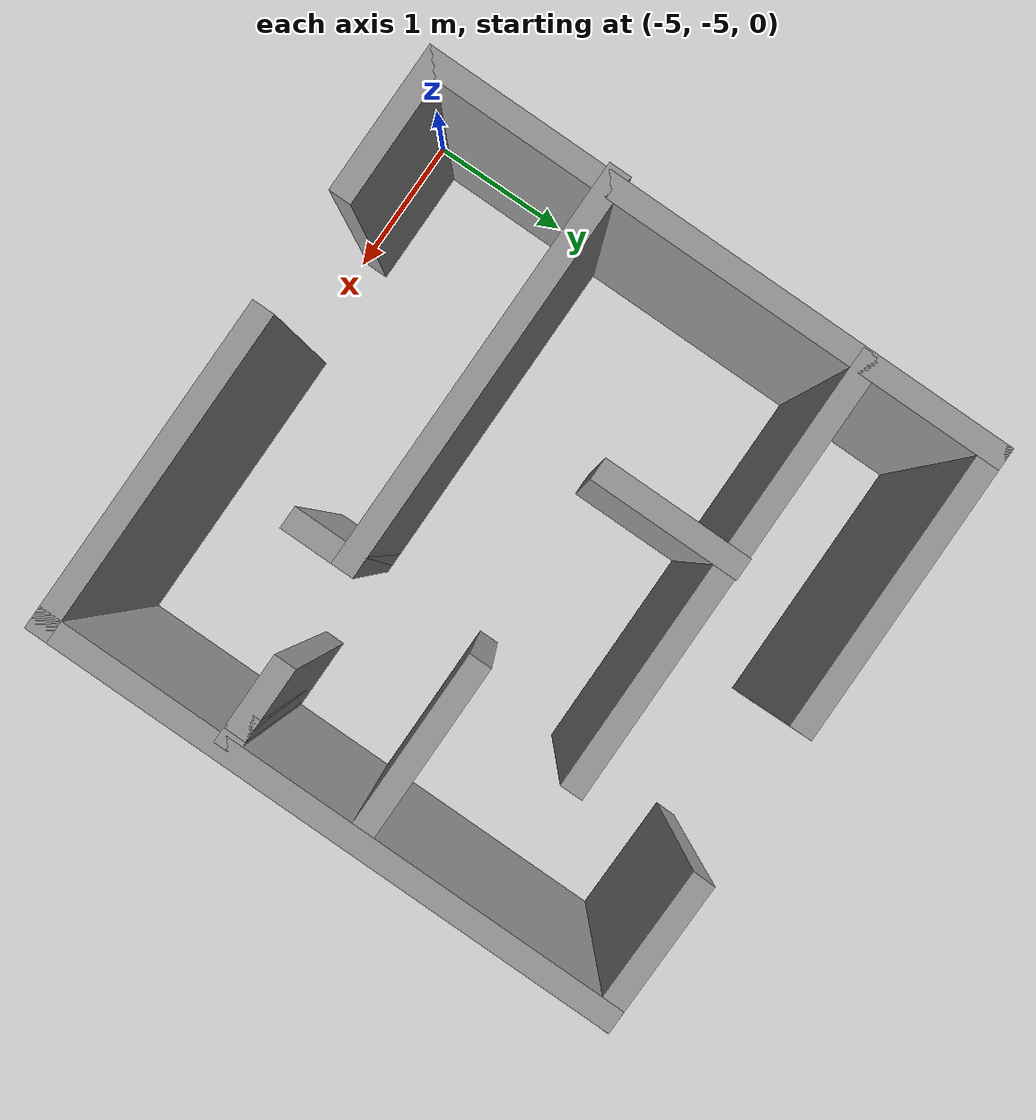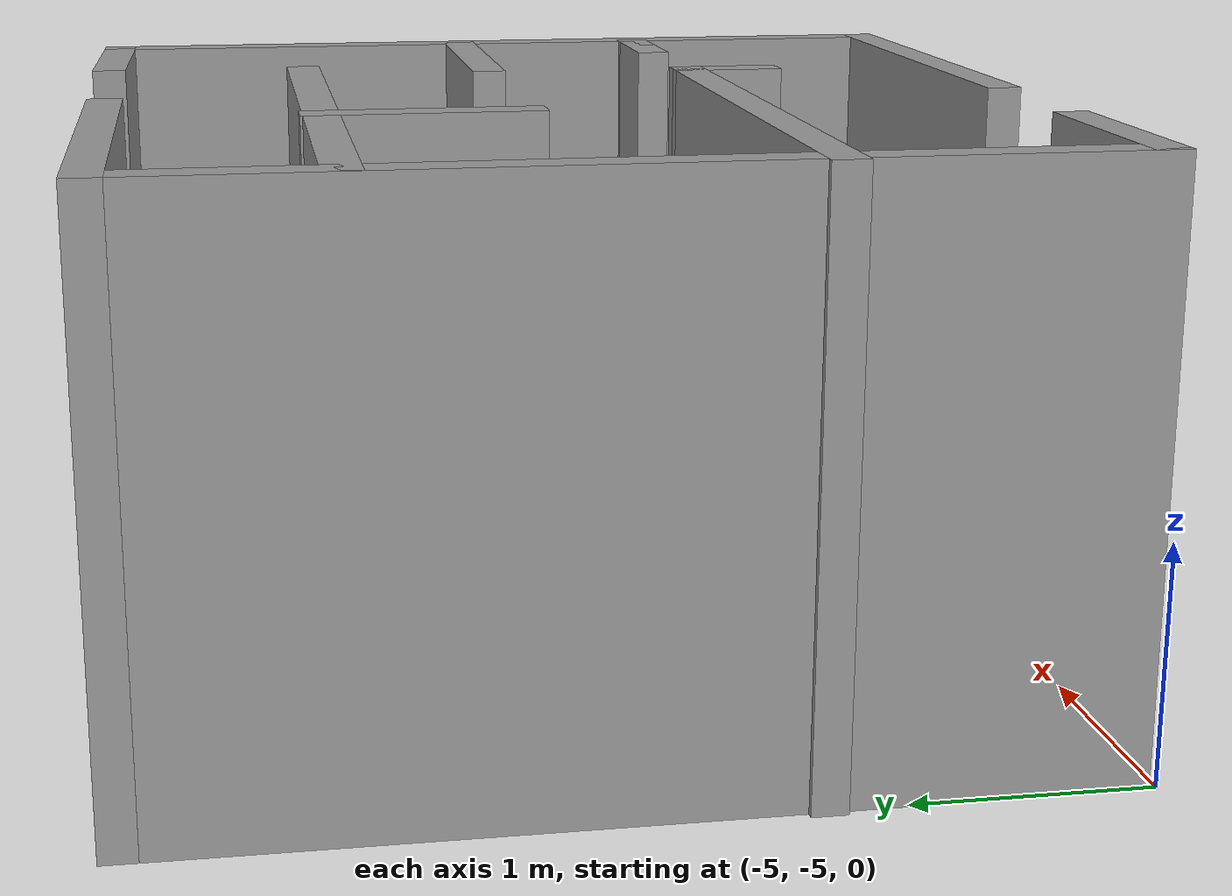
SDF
<?xml version='1.0'?>
<sdf version='1.7'>
  <model name='maze'>
    <pose>-2.5225 -2.4825 0 0 -0 0</pose>
    <link name='Wall_0'>
      <collision name='Wall_0_Collision'>
        <geometry>
          <box>
            <size>2 0.15 2.5</size>
          </box>
        </geometry>
        <pose>0 0 1.25 0 -0 0</pose>
      </collision>
      <visual name='Wall_0_Visual'>
        <pose>0 0 1.25 0 -0 0</pose>
        <geometry>
          <box>
            <size>2 0.15 2.5</size>
          </box>
        </geometry>
        <material>
          <script>
            <uri>file://media/materials/scripts/gazebo.material</uri>
            <name>Gazebo/Grey</name>
          </script>
          <ambient>1 1 1 1</ambient>
        </material>
        <meta>
          <layer>0</layer>
        </meta>
      </visual>
      <pose>-1.4925 1.4425 0 0 -0 0</pose>
    </link>
    <link name='Wall_10'>
      <collision name='Wall_10_Collision'>
        <geometry>
          <box>
            <size>1 0.15 2.5</size>
          </box>
        </geometry>
        <pose>0 0 1.25 0 -0 0</pose>
      </collision>
      <visual name='Wall_10_Visual'>
        <pose>0 0 1.25 0 -0 0</pose>
        <geometry>
          <box>
            <size>1 0.15 2.5</size>
          </box>
        </geometry>
        <material>
          <script>
            <uri>file://media/materials/scripts/gazebo.material</uri>
            <name>Gazebo/Grey</name>
          </script>
          <ambient>1 1 1 1</ambient>
        </material>
        <meta>
          <layer>0</layer>
        </meta>
      </visual>
      <pose>-1.9925 -2.4075 0 0 -0 0</pose>
    </link>
    <link name='Wall_14'>
      <collision name='Wall_14_Collision'>
        <geometry>
          <box>
            <size>2.25 0.15 2.5</size>
          </box>
        </geometry>
        <pose>0 0 1.25 0 -0 0</pose>
      </collision>
      <visual name='Wall_14_Visual'>
        <pose>0 0 1.25 0 -0 0</pose>
        <geometry>
          <box>
            <size>2.25 0.15 2.5</size>
          </box>
        </geometry>
        <material>
          <script>
            <uri>file://media/materials/scripts/gazebo.material</uri>
            <name>Gazebo/Grey</name>
          </script>
          <ambient>1 1 1 1</ambient>
        </material>
        <meta>
          <layer>0</layer>
        </meta>
      </visual>
      <pose>0.3825 -2.4075 0 0 -0 3.14159</pose>
    </link>
    <link name='Wall_16'>
      <collision name='Wall_16_Collision'>
        <geometry>
          <box>
            <size>3 0.15 2.5</size>
          </box>
        </geometry>
        <pose>0 0 1.25 0 -0 0</pose>
      </collision>
      <visual name='Wall_16_Visual'>
        <pose>0 0 1.25 0 -0 0</pose>
        <geometry>
          <box>
            <size>3 0.15 2.5</size>
          </box>
        </geometry>
        <material>
          <script>
            <uri>file://media/materials/scripts/gazebo.material</uri>
            <name>Gazebo/Grey</name>
          </script>
          <ambient>1 1 1 1</ambient>
        </material>
        <meta>
          <layer>0</layer>
        </meta>
      </visual>
      <pose>-0.9825 0.5725 0 0 -0 0</pose>
    </link>
    <link name='Wall_2'>
      <collision name='Wall_2_Collision'>
        <geometry>
          <box>
            <size>4 0.15 2.5</size>
          </box>
        </geometry>
        <pose>0 0 1.25 0 -0 0</pose>
      </collision>
      <visual name='Wall_2_Visual'>
        <pose>0 0 1.25 0 -0 0</pose>
        <geometry>
          <box>
            <size>4 0.15 2.5</size>
          </box>
        </geometry>
        <material>
          <script>
            <uri>file://media/materials/scripts/gazebo.material</uri>
            <name>Gazebo/Grey</name>
          </script>
          <ambient>1 1 1 1</ambient>
        </material>
        <meta>
          <layer>0</layer>
        </meta>
      </visual>
      <pose>-2.4175 -0.4825 0 0 -0 -1.5708</pose>
    </link>
    <link name='Wall_24'>
      <collision name='Wall_24_Collision'>
        <geometry>
          <box>
            <size>2.75 0.15 2.5</size>
          </box>
        </geometry>
        <pose>0 0 1.25 0 -0 0</pose>
      </collision>
      <visual name='Wall_24_Visual'>
        <pose>0 0 1.25 0 -0 0</pose>
        <geometry>
          <box>
            <size>2.75 0.15 2.5</size>
          </box>
        </geometry>
        <material>
          <script>
            <uri>file://media/materials/scripts/gazebo.material</uri>
            <name>Gazebo/Grey</name>
          </script>
          <ambient>1 1 1 1</ambient>
        </material>
        <meta>
          <layer>0</layer>
        </meta>
      </visual>
      <pose>-1.1475 -1.1975 0 0 -0 0</pose>
    </link>
    <link name='Wall_25'>
      <collision name='Wall_25_Collision'>
        <geometry>
          <box>
            <size>0.5 0.15 2.5</size>
          </box>
        </geometry>
        <pose>0 0 1.25 0 -0 0</pose>
      </collision>
      <visual name='Wall_25_Visual'>
        <pose>0 0 1.25 0 -0 0</pose>
        <geometry>
          <box>
            <size>0.5 0.15 2.5</size>
          </box>
        </geometry>
        <material>
          <script>
            <uri>file://media/materials/scripts/gazebo.material</uri>
            <name>Gazebo/Grey</name>
          </script>
          <ambient>1 1 1 1</ambient>
        </material>
        <meta>
          <layer>0</layer>
        </meta>
      </visual>
      <pose>0.1525 -1.3725 0 0 -0 -1.5708</pose>
    </link>
    <link name='Wall_27'>
      <collision name='Wall_27_Collision'>
        <geometry>
          <box>
            <size>0.5 0.15 2.5</size>
          </box>
        </geometry>
        <pose>0 0 1.25 0 -0 0</pose>
      </collision>
      <visual name='Wall_27_Visual'>
        <pose>0 0 1.25 0 -0 0</pose>
        <geometry>
          <box>
            <size>0.5 0.15 2.5</size>
          </box>
        </geometry>
        <material>
          <script>
            <uri>file://media/materials/scripts/gazebo.material</uri>
            <name>Gazebo/Grey</name>
          </script>
          <ambient>1 1 1 1</ambient>
        </material>
        <meta>
          <layer>0</layer>
        </meta>
      </visual>
      <pose>1.0775 -1.1675 0 0 -0 0</pose>
    </link>
    <link name='Wall_29'>
      <collision name='Wall_29_Collision'>
        <geometry>
          <box>
            <size>0.25 0.15 2.5</size>
          </box>
        </geometry>
        <pose>0 0 1.25 0 -0 0</pose>
      </collision>
      <visual name='Wall_29_Visual'>
        <pose>0 0 1.25 0 -0 0</pose>
        <geometry>
          <box>
            <size>0.25 0.15 2.5</size>
          </box>
        </geometry>
        <material>
          <script>
            <uri>file://media/materials/scripts/gazebo.material</uri>
            <name>Gazebo/Grey</name>
          </script>
          <ambient>1 1 1 1</ambient>
        </material>
        <meta>
          <layer>0</layer>
        </meta>
      </visual>
      <pose>1.3025 -1.1675 0 0 -0 0</pose>
    </link>
    <link name='Wall_39'>
      <collision name='Wall_39_Collision'>
        <geometry>
          <box>
            <size>1 0.15 2.5</size>
          </box>
        </geometry>
        <pose>0 0 1.25 0 -0 0</pose>
      </collision>
      <visual name='Wall_39_Visual'>
        <pose>0 0 1.25 0 -0 0</pose>
        <geometry>
          <box>
            <size>1 0.15 2.5</size>
          </box>
        </geometry>
        <material>
          <script>
            <uri>file://media/materials/scripts/gazebo.material</uri>
            <name>Gazebo/Grey</name>
          </script>
          <ambient>1 1 1 1</ambient>
        </material>
        <meta>
          <layer>0</layer>
        </meta>
      </visual>
      <pose>-1.0675 0.1575 0 0 -0 -1.5708</pose>
    </link>
    <link name='Wall_4'>
      <collision name='Wall_4_Collision'>
        <geometry>
          <box>
            <size>4 0.15 2.5</size>
          </box>
        </geometry>
        <pose>0 0 1.25 0 -0 0</pose>
      </collision>
      <visual name='Wall_4_Visual'>
        <pose>0 0 1.25 0 -0 0</pose>
        <geometry>
          <box>
            <size>4 0.15 2.5</size>
          </box>
        </geometry>
        <material>
          <script>
            <uri>file://media/materials/scripts/gazebo.material</uri>
            <name>Gazebo/Grey</name>
          </script>
          <ambient>1 1 1 1</ambient>
        </material>
        <meta>
          <layer>0</layer>
        </meta>
      </visual>
      <pose>1.4325 -0.4825 0 0 -0 1.5708</pose>
    </link>
    <link name='Wall_45'>
      <collision name='Wall_45_Collision'>
        <geometry>
          <box>
            <size>1.25 0.15 2.5</size>
          </box>
        </geometry>
        <pose>0 0 1.25 0 -0 0</pose>
      </collision>
      <visual name='Wall_45_Visual'>
        <pose>0 0 1.25 0 -0 0</pose>
        <geometry>
          <box>
            <size>1.25 0.15 2.5</size>
          </box>
        </geometry>
        <material>
          <script>
            <uri>file://media/materials/scripts/gazebo.material</uri>
            <name>Gazebo/Grey</name>
          </script>
          <ambient>1 1 1 1</ambient>
        </material>
        <meta>
          <layer>0</layer>
        </meta>
      </visual>
      <pose>0.8225 -0.2675 0 0 -0 0</pose>
    </link>
    <link name='Wall_6'>
      <collision name='Wall_6_Collision'>
        <geometry>
          <box>
            <size>1.02023 0.15 2.5</size>
          </box>
        </geometry>
        <pose>0 0 1.25 0 -0 0</pose>
      </collision>
      <visual name='Wall_6_Visual'>
        <pose>0 0 1.25 0 -0 0</pose>
        <geometry>
          <box>
            <size>1.02023 0.15 2.5</size>
          </box>
        </geometry>
        <material>
          <script>
            <uri>file://media/materials/scripts/gazebo.material</uri>
            <name>Gazebo/Grey</name>
          </script>
          <ambient>1 1 1 1</ambient>
        </material>
        <meta>
          <layer>0</layer>
        </meta>
      </visual>
      <pose>0.9975 1.4525 0 0 -0 -0.022984</pose>
    </link>
    <static>1</static>
  </model>
</sdf>
